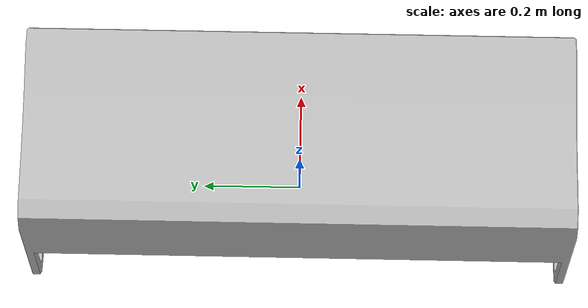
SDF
<sdf version="1.6">
    <model name="airportbench">
        <static>true</static>
        <link name="body">
            <pose>0 0 0 0 0 0</pose>
            <visual name="visual">
                <geometry>
                    <mesh>
                        <uri>https://fuel.gazebosim.org/1.0/openrobotics/models/airportbench/2/files/meshes/AirportBench.obj</uri>
                    </mesh>
                </geometry>
            </visual>
            <collision name="collision">
                <geometry>
                    <mesh>
                        <uri>https://fuel.gazebosim.org/1.0/openrobotics/models/airportbench/2/files/meshes/AirportBench_Col.obj</uri>
                    </mesh>
                </geometry>
            </collision>
        </link>
    </model>
</sdf>
